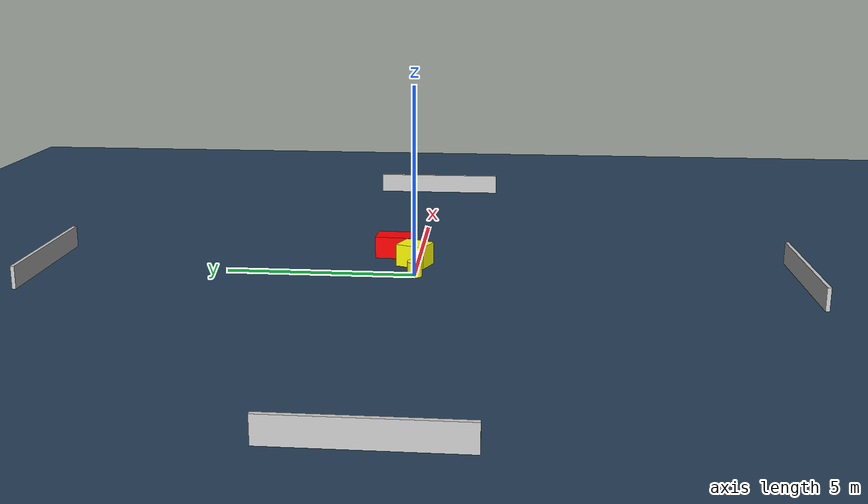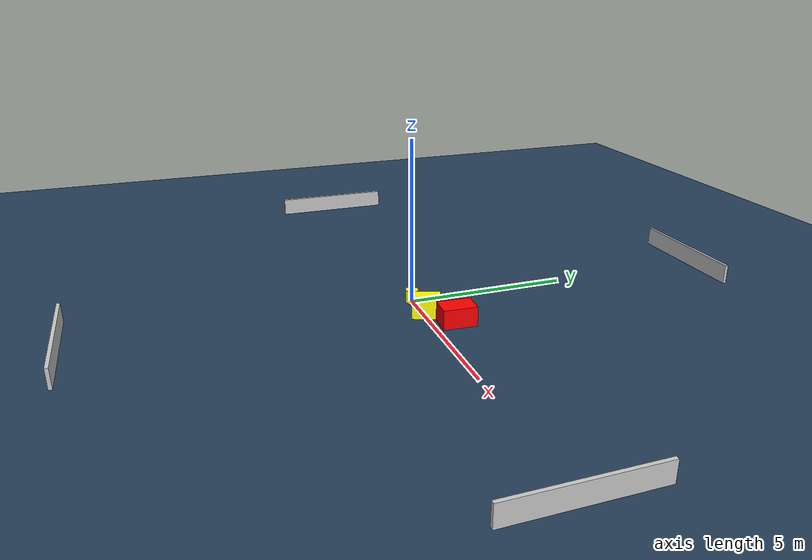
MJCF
<?xml version="1.0" ?>
<mujoco model="generated_environment">
  <option timestep="0.01" integrator="RK4" cone="elliptic"/>
  <default>
    <geom density="1"/>
  </default>
  <asset>
    <texture builtin="gradient" height="3072" name="skybox" rgb1="0.3 0.5 0.7" rgb2="0 0 0" type="skybox" width="512"/>
    <texture builtin="checker" height="300" name="groundplane" rgb1="0.2 0.3 0.4" rgb2="0.1 0.2 0.3" type="2d" width="300"/>
    <material name="groundplane" reflectance="0.2" texrepeat="5 5" texture="groundplane"/>
  </asset>
  <worldbody>
    <light dir="0 0 -1" directional="true" pos="0 0 1.5"/>
    <geom condim="3" friction="0.5 0.005 0.001" material="groundplane" name="floor" pos="0 0 0" size="0 0 0.05" type="plane"/>
    <body name="walls">
      <geom name="wall_1" condim="4" pos="-10.0 0.0 0.3" rgba="0.800000011920929 0.800000011920929 0.800000011920929 1.0" size="0.05 2.0 0.3" type="box"/>
      <geom name="wall_2" condim="4" pos="10.0 0.0 0.3" rgba="0.800000011920929 0.800000011920929 0.800000011920929 1.0" size="0.05 2.0 0.3" type="box"/>
      <geom name="wall_3" condim="4" pos="0.0 -10.0 0.3" rgba="0.800000011920929 0.800000011920929 0.800000011920929 1.0" size="2.0 0.05 0.3" type="box"/>
      <geom name="wall_4" condim="4" pos="0.0 10.0 0.3" rgba="0.800000011920929 0.800000011920929 0.800000011920929 1.0" size="2.0 0.05 0.3" type="box"/>
    </body>
    <body name="robot">
      <joint name="joint_x" type="slide" pos="0 0 0" axis="1 0 0"/>
      <joint name="joint_y" type="slide" pos="0 0 0" axis="0 1 0"/>
      <geom name="robot" type="cylinder" pos="0.0 0.0 0.2" size="0.2 0.2 0.0" mass="5.0" friction="1.0 0.005 0.0001" condim="4" rgba="1.0 1.0 0.0 1.0"/>
    </body>
    <body name="obstacle_1_movable">
      <geom name="obstacle_1_movable" condim="4" pos="1.0248716647207996 0.07984362100482949 0.3" euler="0 0 68.4286239283113" friction="0.0 0.005 0.001" rgba="1.0 1.0 0.0 1.0" size="0.40804033701207987 0.3308672243901015 0.3" type="box" mass="0.1"/>
      <joint type="free"/>
    </body>
    <body name="obstacle_2_static">
      <geom name="obstacle_2_static" condim="4" pos="1.871833536919372 0.7016621006786067 0.3" euler="0 0 267.02455312616627" friction="0.0 0.005 0.001" rgba="1.0 0.0 0.0 1.0" size="0.5129595989017947 0.33602707856994996 0.3" type="box"/>
    </body>
  </worldbody>
  <actuator>
    <motor name="actuator_x" joint="joint_x" gear="1" ctrlrange="-1 1"/>
    <motor name="actuator_y" joint="joint_y" gear="1" ctrlrange="-1 1"/>
  </actuator>
</mujoco>
